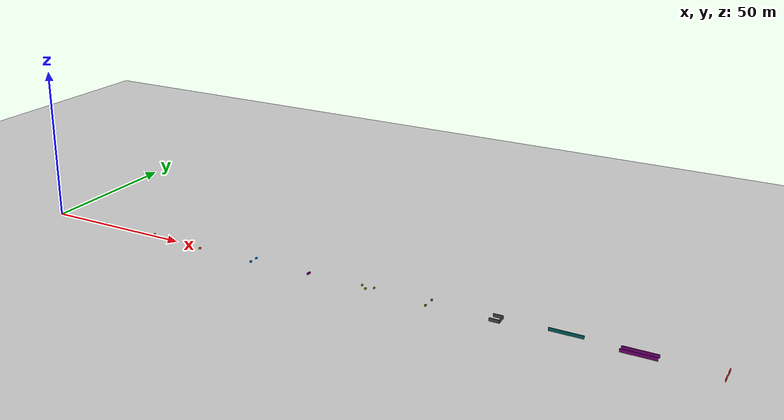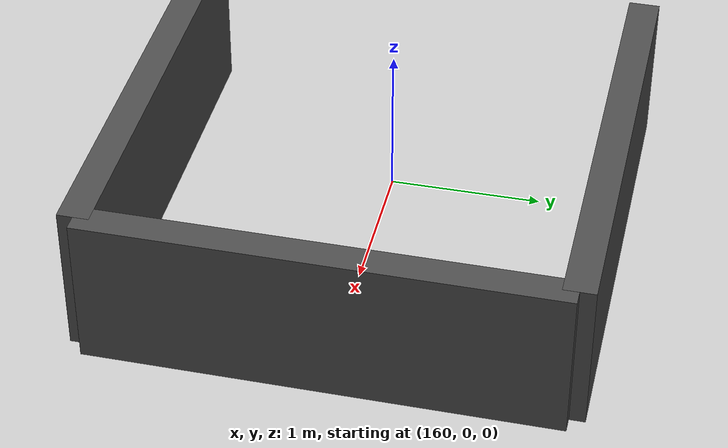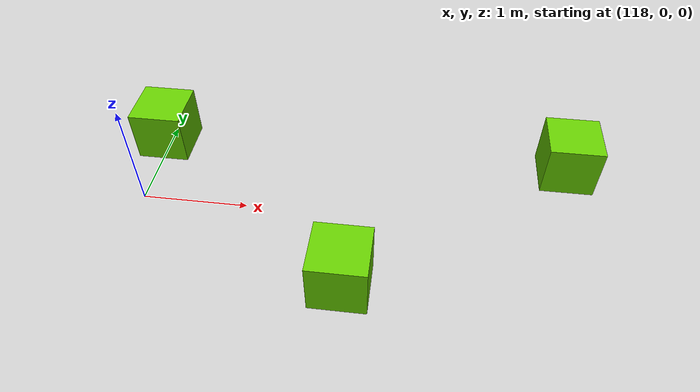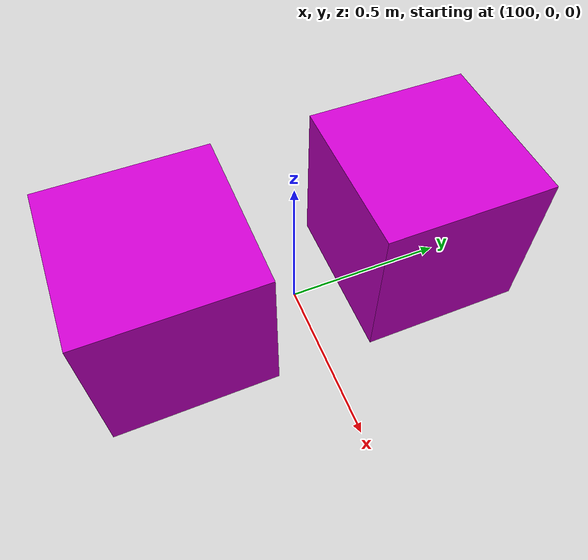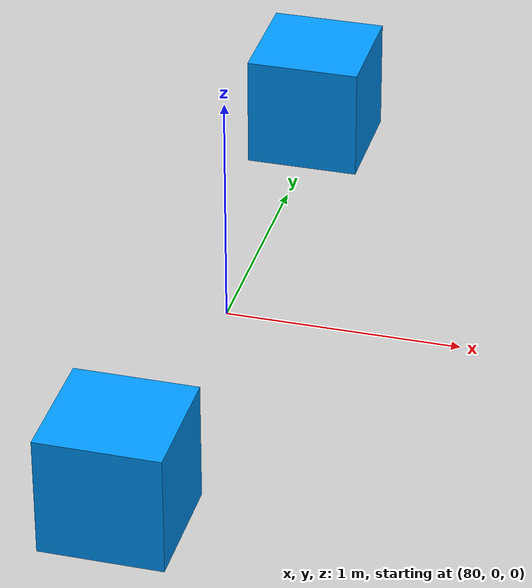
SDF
<?xml version="1.0" ?>
<sdf version="1.8">
  <world name="masonassist_world">
    <physics type="ode">
      <max_step_size>0.001</max_step_size>
      <real_time_factor>1.0</real_time_factor>
    </physics>

    <plugin name="gz::sim::systems::Physics" filename="gz-sim-physics-system"/>
    <plugin name="gz::sim::systems::UserCommands" filename="gz-sim-user-commands-system"/>
    <plugin name="gz::sim::systems::SceneBroadcaster" filename="gz-sim-scene-broadcaster-system"/>
    <plugin name="gz::sim::systems::Contact" filename="gz-sim-contact-system"/>
    <plugin name="gz::sim::systems::Imu" filename="gz-sim-imu-system"/>
    <plugin name="gz::sim::systems::Sensors" filename="gz-sim-sensors-system">
      <render_engine>ogre2</render_engine>
    </plugin>

    <gravity>0 0 -9.8</gravity>

    <model name="ground_plane">
      <static>true</static>
      <link name="link">
        <collision name="collision">
          <geometry><plane><normal>0 0 1</normal><size>300 30</size></plane></geometry>
          <surface><friction><ode><mu>1.0</mu><mu2>1.0</mu2></ode></friction></surface>
        </collision>
        <visual name="visual">
          <geometry><plane><normal>0 0 1</normal><size>300 30</size></plane></geometry>
          <material>
            <ambient>0.8 0.8 0.8 1</ambient>
            <diffuse>0.8 0.8 0.8 1</diffuse>
            <specular>0.8 0.8 0.8 1</specular>
          </material>
        </visual>
      </link>
    </model>

    <!-- ---------- Cluster 0 (x=0):  SCENARIO A - empty/open ---------- -->
    <!-- Deliberately no obstacles. -->

    <!-- ---------- Cluster 1 (x=20): SCENARIO B - single obstacle ahead ---------- -->
    <model name="b_obstacle_ahead">
      <static>true</static>
      <pose>20.0 0 0.25 0 0 0</pose>
      <link name="link">
        <collision name="collision"><geometry><box><size>0.5 0.5 0.5</size></box></geometry></collision>
        <visual name="visual"><geometry><box><size>0.5 0.5 0.5</size></box></geometry>
          <material><ambient>1 0 0 1</ambient><diffuse>1 0 0 1</diffuse></material></visual>
      </link>
    </model>

    <!-- ---------- Cluster 2 (x=40): SCENARIO C - obstacle offset left (+Y) ---------- -->
    <model name="c_obstacle_left">
      <static>true</static>
      <pose>40.0 1.0 0.25 0 0 0</pose>
      <link name="link">
        <collision name="collision"><geometry><box><size>0.5 0.5 0.5</size></box></geometry></collision>
        <visual name="visual"><geometry><box><size>0.5 0.5 0.5</size></box></geometry>
          <material><ambient>1 0.5 0 1</ambient><diffuse>1 0.5 0 1</diffuse></material></visual>
      </link>
    </model>

    <!-- ---------- Cluster 3 (x=60): SCENARIO D - obstacle offset right (-Y) ---------- -->
    <model name="d_obstacle_right">
      <static>true</static>
      <pose>60.0 -1.0 0.25 0 0 0</pose>
      <link name="link">
        <collision name="collision"><geometry><box><size>0.5 0.5 0.5</size></box></geometry></collision>
        <visual name="visual"><geometry><box><size>0.5 0.5 0.5</size></box></geometry>
          <material><ambient>1 0.5 0 1</ambient><diffuse>1 0.5 0 1</diffuse></material></visual>
      </link>
    </model>

    <!-- ---------- Cluster 4 (x=80): SCENARIO E - traversable corridor (gap=3.0m) ---------- -->
    <model name="e_corridor_left">
      <static>true</static>
      <pose>80.0 1.5 0.25 0 0 0</pose>
      <link name="link">
        <collision name="collision"><geometry><box><size>0.5 0.5 0.5</size></box></geometry></collision>
        <visual name="visual"><geometry><box><size>0.5 0.5 0.5</size></box></geometry>
          <material><ambient>0 0.6 1 1</ambient><diffuse>0 0.6 1 1</diffuse></material></visual>
      </link>
    </model>
    <model name="e_corridor_right">
      <static>true</static>
      <pose>80.0 -1.5 0.25 0 0 0</pose>
      <link name="link">
        <collision name="collision"><geometry><box><size>0.5 0.5 0.5</size></box></geometry></collision>
        <visual name="visual"><geometry><box><size>0.5 0.5 0.5</size></box></geometry>
          <material><ambient>0 0.6 1 1</ambient><diffuse>0 0.6 1 1</diffuse></material></visual>
      </link>
    </model>

    <!-- ---------- Cluster 5 (x=100): SCENARIO F - narrow passage (gap=0.8m < 2*r_effective=1.195m) ---------- -->
    <model name="f_narrow_left">
      <static>true</static>
      <pose>100.0 0.4 0.25 0 0 0</pose>
      <link name="link">
        <collision name="collision"><geometry><box><size>0.5 0.5 0.5</size></box></geometry></collision>
        <visual name="visual"><geometry><box><size>0.5 0.5 0.5</size></box></geometry>
          <material><ambient>0.8 0 0.8 1</ambient><diffuse>0.8 0 0.8 1</diffuse></material></visual>
      </link>
    </model>
    <model name="f_narrow_right">
      <static>true</static>
      <pose>100.0 -0.4 0.25 0 0 0</pose>
      <link name="link">
        <collision name="collision"><geometry><box><size>0.5 0.5 0.5</size></box></geometry></collision>
        <visual name="visual"><geometry><box><size>0.5 0.5 0.5</size></box></geometry>
          <material><ambient>0.8 0 0.8 1</ambient><diffuse>0.8 0 0.8 1</diffuse></material></visual>
      </link>
    </model>

    <!-- ---------- Cluster 6 (x=120): SCENARIO G - staggered obstacles (slalom) ---------- -->
    <model name="g_stagger_1">
      <static>true</static>
      <pose>118.0 0.8 0.25 0 0 0</pose>
      <link name="link">
        <collision name="collision"><geometry><box><size>0.5 0.5 0.5</size></box></geometry></collision>
        <visual name="visual"><geometry><box><size>0.5 0.5 0.5</size></box></geometry>
          <material><ambient>0.4 0.8 0 1</ambient><diffuse>0.4 0.8 0 1</diffuse></material></visual>
      </link>
    </model>
    <model name="g_stagger_2">
      <static>true</static>
      <pose>120.0 -0.8 0.25 0 0 0</pose>
      <link name="link">
        <collision name="collision"><geometry><box><size>0.5 0.5 0.5</size></box></geometry></collision>
        <visual name="visual"><geometry><box><size>0.5 0.5 0.5</size></box></geometry>
          <material><ambient>0.4 0.8 0 1</ambient><diffuse>0.4 0.8 0 1</diffuse></material></visual>
      </link>
    </model>
    <model name="g_stagger_3">
      <static>true</static>
      <pose>122.0 0.8 0.25 0 0 0</pose>
      <link name="link">
        <collision name="collision"><geometry><box><size>0.5 0.5 0.5</size></box></geometry></collision>
        <visual name="visual"><geometry><box><size>0.5 0.5 0.5</size></box></geometry>
          <material><ambient>0.4 0.8 0 1</ambient><diffuse>0.4 0.8 0 1</diffuse></material></visual>
      </link>
    </model>

    <!-- ---------- Cluster 7 (x=140): SCENARIO H - symmetric wide obstacles (gap=4.0m) ---------- -->
    <model name="h_sym_left">
      <static>true</static>
      <pose>140.0 2.0 0.25 0 0 0</pose>
      <link name="link">
        <collision name="collision"><geometry><box><size>0.5 0.5 0.5</size></box></geometry></collision>
        <visual name="visual"><geometry><box><size>0.5 0.5 0.5</size></box></geometry>
          <material><ambient>0.6 0.6 0 1</ambient><diffuse>0.6 0.6 0 1</diffuse></material></visual>
      </link>
    </model>
    <model name="h_sym_right">
      <static>true</static>
      <pose>140.0 -2.0 0.25 0 0 0</pose>
      <link name="link">
        <collision name="collision"><geometry><box><size>0.5 0.5 0.5</size></box></geometry></collision>
        <visual name="visual"><geometry><box><size>0.5 0.5 0.5</size></box></geometry>
          <material><ambient>0.6 0.6 0 1</ambient><diffuse>0.6 0.6 0 1</diffuse></material></visual>
      </link>
    </model>

    <model name="i_dead_end_back">
      <static>true</static>
      <pose>162.0 0 0.5 0 0 0</pose>
      <link name="link">
        <collision name="collision"><geometry><box><size>0.2 3.0 1.0</size></box></geometry></collision>
        <visual name="visual"><geometry><box><size>0.2 3.0 1.0</size></box></geometry>
          <material><ambient>0.3 0.3 0.3 1</ambient><diffuse>0.3 0.3 0.3 1</diffuse></material></visual>
      </link>
    </model>
    <model name="i_dead_end_side_left">
      <static>true</static>
      <pose>160.5 1.5 0.5 0 0 0</pose>
      <link name="link">
        <collision name="collision"><geometry><box><size>3.0 0.2 1.0</size></box></geometry></collision>
        <visual name="visual"><geometry><box><size>3.0 0.2 1.0</size></box></geometry>
          <material><ambient>0.3 0.3 0.3 1</ambient><diffuse>0.3 0.3 0.3 1</diffuse></material></visual>
      </link>
    </model>
    <model name="i_dead_end_side_right">
      <static>true</static>
      <pose>160.5 -1.5 0.5 0 0 0</pose>
      <link name="link">
        <collision name="collision"><geometry><box><size>3.0 0.2 1.0</size></box></geometry></collision>
        <visual name="visual"><geometry><box><size>3.0 0.2 1.0</size></box></geometry>
          <material><ambient>0.3 0.3 0.3 1</ambient><diffuse>0.3 0.3 0.3 1</diffuse></material></visual>
      </link>
    </model>

    <!-- ---------- Cluster 9 (x=180): SCENARIO J - continuous wall, one side ----------
         Single 10m-long wall at y=+1.2, parallel to the robot's travel
         direction (never directly ahead). -->
    <model name="j_side_wall">
      <static>true</static>
      <pose>180.0 1.2 0.5 0 0 0</pose>
      <link name="link">
        <collision name="collision"><geometry><box><size>10.0 0.2 1.0</size></box></geometry></collision>
        <visual name="visual"><geometry><box><size>10.0 0.2 1.0</size></box></geometry>
          <material><ambient>0 0.4 0.4 1</ambient><diffuse>0 0.4 0.4 1</diffuse></material></visual>
      </link>
    </model>

    <model name="k_wall_left">
      <static>true</static>
      <pose>200.0 0.9 0.5 0 0 0</pose>
      <link name="link">
        <collision name="collision"><geometry><box><size>10.0 0.2 1.0</size></box></geometry></collision>
        <visual name="visual"><geometry><box><size>10.0 0.2 1.0</size></box></geometry>
          <material><ambient>0.5 0 0.5 1</ambient><diffuse>0.5 0 0.5 1</diffuse></material></visual>
      </link>
    </model>
    <model name="k_wall_right">
      <static>true</static>
      <pose>200.0 -0.9 0.5 0 0 0</pose>
      <link name="link">
        <collision name="collision"><geometry><box><size>10.0 0.2 1.0</size></box></geometry></collision>
        <visual name="visual"><geometry><box><size>10.0 0.2 1.0</size></box></geometry>
          <material><ambient>0.5 0 0.5 1</ambient><diffuse>0.5 0 0.5 1</diffuse></material></visual>
      </link>
    </model>

    <model name="l_dense_wall_left">
      <static>true</static>
      <pose>222.0 1.875 0.5 0 0 0</pose>
      <link name="link">
        <collision name="collision"><geometry><box><size>0.2 2.25 1.0</size></box></geometry></collision>
        <visual name="visual"><geometry><box><size>0.2 2.25 1.0</size></box></geometry>
          <material><ambient>0.9 0.2 0.2 1</ambient><diffuse>0.9 0.2 0.2 1</diffuse></material></visual>
      </link>
    </model>
    <model name="l_dense_wall_right">
      <static>true</static>
      <pose>222.0 -1.875 0.5 0 0 0</pose>
      <link name="link">
        <collision name="collision"><geometry><box><size>0.2 2.25 1.0</size></box></geometry></collision>
        <visual name="visual"><geometry><box><size>0.2 2.25 1.0</size></box></geometry>
          <material><ambient>0.9 0.2 0.2 1</ambient><diffuse>0.9 0.2 0.2 1</diffuse></material></visual>
      </link>
    </model>

    <light type="directional" name="sun">
      <cast_shadows>true</cast_shadows>
      <pose>0 0 10 0 0 0</pose>
      <diffuse>0.8 0.8 0.8 1</diffuse>
      <specular>0.2 0.2 0.2 1</specular>
      <direction>-0.5 0.1 -0.9</direction>
    </light>
  </world>
</sdf>
